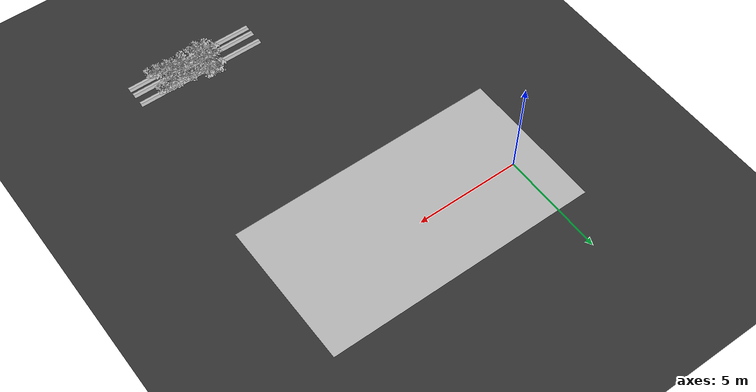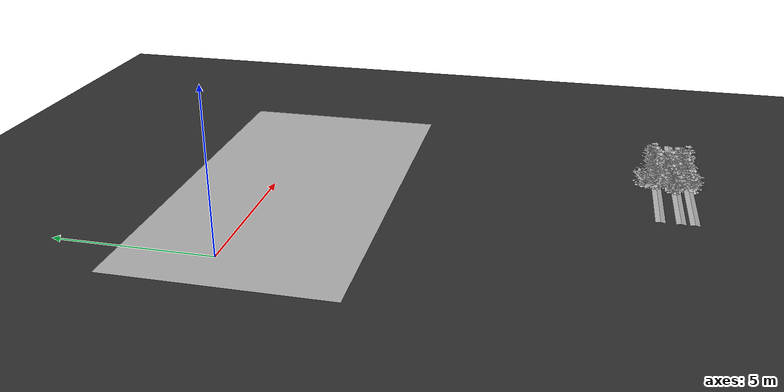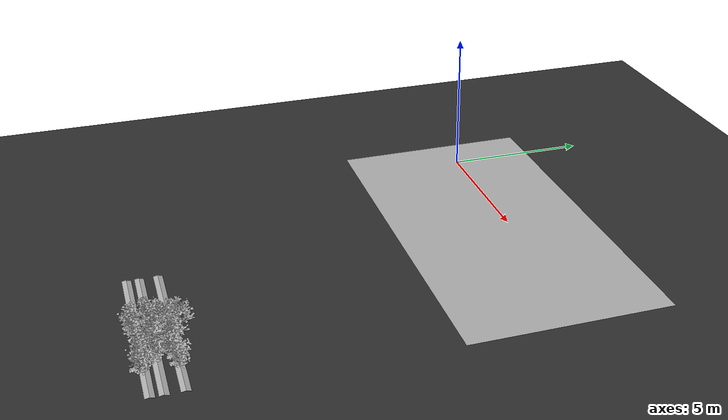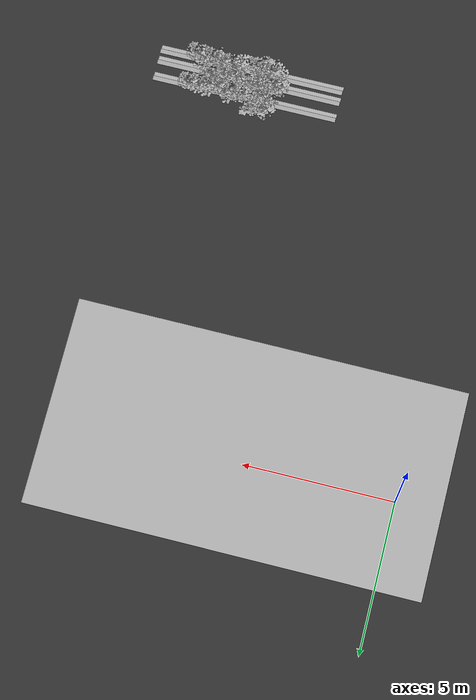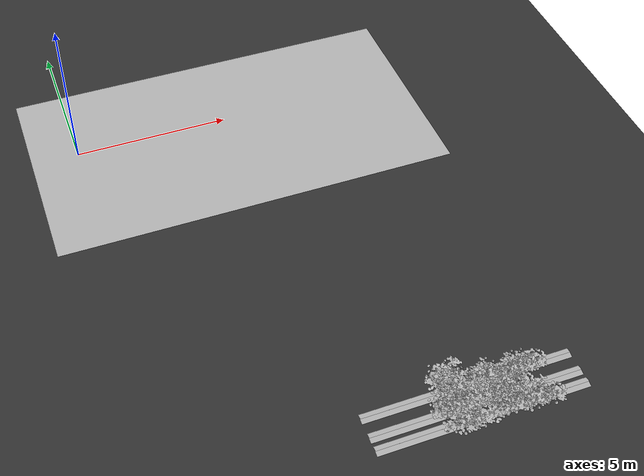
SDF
<sdf version="1.7">
 <world name="default">
  <model name="ground_plane">
   <static>1</static>
   <link name="link">
    <collision name="collision">
     <geometry><plane><normal>0 0 1</normal><size>100 100</size></plane></geometry>
     <surface>
      <contact><collide_bitmask>65535</collide_bitmask></contact>
      <friction><ode><mu>100</mu><mu2>50</mu2></ode></friction>
     </surface>
    </collision>
    <visual name="visual">
     <cast_shadows>0</cast_shadows>
     <geometry><plane><normal>0 0 1</normal><size>100 100</size></plane></geometry>
     <material>
      <ambient>0.2 0.2 0.2 1.0</ambient>
      <diffuse>0.2 0.2 0.2 1.0</diffuse>
      <specular>0.2 0.2 0.2 1.0</specular>
      <emissive>0.2 0.2 0.2 1.0</emissive>
     </material>
    </visual>
   </link>
  </model>
  <model name="ground">
   <pose>5 -0.5 0.01  3.141592654 0 0</pose>
   <static>true</static>
   <link name="body">
    <visual name="visual">
     <cast_shadows>0</cast_shadows>
     <geometry>
      <mesh><uri>file:///home/ifcosta/catkin_ws/src/cnn_line/worlds/models/ground.obj</uri></mesh>
     </geometry>
    </visual>
   </link>
  </model>
  <model name="plt_40024">
   <pose>7.23 -13.3 0.0149 0.0 0.0 0.73686</pose>
   <static>true</static>
   <link name="body">
    <visual name="visual">
     <geometry>
      <mesh><uri>file:///home/ifcosta/catkin_ws/src/cnn_line/worlds/models/plant37.obj</uri></mesh>
     </geometry>
    </visual>
   </link>
  </model>
  <model name="plt_40025">
   <pose>7.53 -13.3 0.0139 0.0 0.0 -1.293</pose>
   <static>true</static>
   <link name="body">
    <visual name="visual">
     <geometry>
      <mesh><uri>file:///home/ifcosta/catkin_ws/src/cnn_line/worlds/models/plant37.obj</uri></mesh>
     </geometry>
    </visual>
   </link>
  </model>
  <model name="plt_40026">
   <pose>7.75 -13.3 0.0156 0.0 0.0 0.22339</pose>
   <static>true</static>
   <link name="body">
    <visual name="visual">
     <geometry>
      <mesh><uri>file:///home/ifcosta/catkin_ws/src/cnn_line/worlds/models/plant37.obj</uri></mesh>
     </geometry>
    </visual>
   </link>
  </model>
  <model name="plt_40028">
   <pose>8.43 -13.2 0.0144 0.0 0.0 1.6141</pose>
   <static>true</static>
   <link name="body">
    <visual name="visual">
     <geometry>
      <mesh><uri>file:///home/ifcosta/catkin_ws/src/cnn_line/worlds/models/plant37.obj</uri></mesh>
     </geometry>
    </visual>
   </link>
  </model>
  <model name="plt_40029">
   <pose>8.71 -13.2 0.011 0.0 0.0 0.21427</pose>
   <static>true</static>
   <link name="body">
    <visual name="visual">
     <geometry>
      <mesh><uri>file:///home/ifcosta/catkin_ws/src/cnn_line/worlds/models/plant37.obj</uri></mesh>
     </geometry>
    </visual>
   </link>
  </model>
  <model name="plt_40030">
   <pose>9.02 -13.2 0.0133 0.0 0.0 0.032871</pose>
   <static>true</static>
   <link name="body">
    <visual name="visual">
     <geometry>
      <mesh><uri>file:///home/ifcosta/catkin_ws/src/cnn_line/worlds/models/plant37.obj</uri></mesh>
     </geometry>
    </visual>
   </link>
  </model>
  <model name="plt_40031">
   <pose>9.29 -13.3 0.0153 0.0 0.0 0.39511</pose>
   <static>true</static>
   <link name="body">
    <visual name="visual">
     <geometry>
      <mesh><uri>file:///home/ifcosta/catkin_ws/src/cnn_line/worlds/models/plant37.obj</uri></mesh>
     </geometry>
    </visual>
   </link>
  </model>
  <model name="plt_40032">
   <pose>9.65 -13.2 0.0117 0.0 0.0 -1.1111</pose>
   <static>true</static>
   <link name="body">
    <visual name="visual">
     <geometry>
      <mesh><uri>file:///home/ifcosta/catkin_ws/src/cnn_line/worlds/models/plant37.obj</uri></mesh>
     </geometry>
    </visual>
   </link>
  </model>
  <model name="plt_40033">
   <pose>9.9 -13.3 0.0164 0.0 0.0 0.026035</pose>
   <static>true</static>
   <link name="body">
    <visual name="visual">
     <geometry>
      <mesh><uri>file:///home/ifcosta/catkin_ws/src/cnn_line/worlds/models/plant37.obj</uri></mesh>
     </geometry>
    </visual>
   </link>
  </model>
  <model name="slope_1634">
   <pose>8.0 -13.2 -0.005 0.0 0.0 0.0</pose>
   <static>true</static>
   <link name="body">
    <visual name="visual">
     <geometry>
      <mesh><uri>file:///home/ifcosta/catkin_ws/src/cnn_line/worlds/models/slope.obj</uri></mesh>
     </geometry>
    </visual>
   </link>
  </model>
  <model name="slope_1734">
   <pose>8.0 -13.2 -0.005 0.0 0.0 3.1416</pose>
   <static>true</static>
   <link name="body">
    <visual name="visual">
     <geometry>
      <mesh><uri>file:///home/ifcosta/catkin_ws/src/cnn_line/worlds/models/slope.obj</uri></mesh>
     </geometry>
    </visual>
   </link>
  </model>
  <model name="plt_40057">
   <pose>6.93 -12.7 0.0172 0.0 0.0 -1.5789</pose>
   <static>true</static>
   <link name="body">
    <visual name="visual">
     <geometry>
      <mesh><uri>file:///home/ifcosta/catkin_ws/src/cnn_line/worlds/models/plant37.obj</uri></mesh>
     </geometry>
    </visual>
   </link>
  </model>
  <model name="plt_40058">
   <pose>7.18 -12.8 0.0165 0.0 0.0 -0.016354</pose>
   <static>true</static>
   <link name="body">
    <visual name="visual">
     <geometry>
      <mesh><uri>file:///home/ifcosta/catkin_ws/src/cnn_line/worlds/models/plant37.obj</uri></mesh>
     </geometry>
    </visual>
   </link>
  </model>
  <model name="plt_40059">
   <pose>7.49 -12.7 0.0131 0.0 0.0 -0.033148</pose>
   <static>true</static>
   <link name="body">
    <visual name="visual">
     <geometry>
      <mesh><uri>file:///home/ifcosta/catkin_ws/src/cnn_line/worlds/models/plant37.obj</uri></mesh>
     </geometry>
    </visual>
   </link>
  </model>
  <model name="plt_40060">
   <pose>7.75 -12.7 0.013 0.0 0.0 0.92117</pose>
   <static>true</static>
   <link name="body">
    <visual name="visual">
     <geometry>
      <mesh><uri>file:///home/ifcosta/catkin_ws/src/cnn_line/worlds/models/plant37.obj</uri></mesh>
     </geometry>
    </visual>
   </link>
  </model>
  <model name="plt_40061">
   <pose>8.05 -12.7 0.0144 0.0 0.0 0.4469</pose>
   <static>true</static>
   <link name="body">
    <visual name="visual">
     <geometry>
      <mesh><uri>file:///home/ifcosta/catkin_ws/src/cnn_line/worlds/models/plant37.obj</uri></mesh>
     </geometry>
    </visual>
   </link>
  </model>
  <model name="plt_40062">
   <pose>8.37 -12.8 0.018 0.0 0.0 -0.53712</pose>
   <static>true</static>
   <link name="body">
    <visual name="visual">
     <geometry>
      <mesh><uri>file:///home/ifcosta/catkin_ws/src/cnn_line/worlds/models/plant37.obj</uri></mesh>
     </geometry>
    </visual>
   </link>
  </model>
  <model name="plt_40063">
   <pose>8.7 -12.7 0.015 0.0 0.0 -2.7113</pose>
   <static>true</static>
   <link name="body">
    <visual name="visual">
     <geometry>
      <mesh><uri>file:///home/ifcosta/catkin_ws/src/cnn_line/worlds/models/plant37.obj</uri></mesh>
     </geometry>
    </visual>
   </link>
  </model>
  <model name="plt_40064">
   <pose>8.95 -12.7 0.016 0.0 0.0 1.8262</pose>
   <static>true</static>
   <link name="body">
    <visual name="visual">
     <geometry>
      <mesh><uri>file:///home/ifcosta/catkin_ws/src/cnn_line/worlds/models/plant37.obj</uri></mesh>
     </geometry>
    </visual>
   </link>
  </model>
  <model name="plt_40065">
   <pose>9.27 -12.7 0.0154 0.0 0.0 -0.1378</pose>
   <static>true</static>
   <link name="body">
    <visual name="visual">
     <geometry>
      <mesh><uri>file:///home/ifcosta/catkin_ws/src/cnn_line/worlds/models/plant37.obj</uri></mesh>
     </geometry>
    </visual>
   </link>
  </model>
  <model name="slope_1668">
   <pose>8.0 -12.8 -0.005 0.0 0.0 0.0</pose>
   <static>true</static>
   <link name="body">
    <visual name="visual">
     <geometry>
      <mesh><uri>file:///home/ifcosta/catkin_ws/src/cnn_line/worlds/models/slope.obj</uri></mesh>
     </geometry>
    </visual>
   </link>
  </model>
  <model name="slope_1768">
   <pose>8.0 -12.8 -0.005 0.0 0.0 3.1416</pose>
   <static>true</static>
   <link name="body">
    <visual name="visual">
     <geometry>
      <mesh><uri>file:///home/ifcosta/catkin_ws/src/cnn_line/worlds/models/slope.obj</uri></mesh>
     </geometry>
    </visual>
   </link>
  </model>
  <model name="plt_40092">
   <pose>7.21 -12.2 0.0153 0.0 0.0 -0.8876</pose>
   <static>true</static>
   <link name="body">
    <visual name="visual">
     <geometry>
      <mesh><uri>file:///home/ifcosta/catkin_ws/src/cnn_line/worlds/models/plant37.obj</uri></mesh>
     </geometry>
    </visual>
   </link>
  </model>
  <model name="plt_40093">
   <pose>7.51 -12.3 0.0173 0.0 0.0 -0.66743</pose>
   <static>true</static>
   <link name="body">
    <visual name="visual">
     <geometry>
      <mesh><uri>file:///home/ifcosta/catkin_ws/src/cnn_line/worlds/models/plant37.obj</uri></mesh>
     </geometry>
    </visual>
   </link>
  </model>
  <model name="plt_40095">
   <pose>8.11 -12.2 0.0139 0.0 0.0 0.61712</pose>
   <static>true</static>
   <link name="body">
    <visual name="visual">
     <geometry>
      <mesh><uri>file:///home/ifcosta/catkin_ws/src/cnn_line/worlds/models/plant37.obj</uri></mesh>
     </geometry>
    </visual>
   </link>
  </model>
  <model name="plt_40096">
   <pose>8.43 -12.2 0.0131 0.0 0.0 0.54068</pose>
   <static>true</static>
   <link name="body">
    <visual name="visual">
     <geometry>
      <mesh><uri>file:///home/ifcosta/catkin_ws/src/cnn_line/worlds/models/plant37.obj</uri></mesh>
     </geometry>
    </visual>
   </link>
  </model>
  <model name="plt_40097">
   <pose>8.67 -12.2 0.0174 0.0 0.0 -0.43459</pose>
   <static>true</static>
   <link name="body">
    <visual name="visual">
     <geometry>
      <mesh><uri>file:///home/ifcosta/catkin_ws/src/cnn_line/worlds/models/plant37.obj</uri></mesh>
     </geometry>
    </visual>
   </link>
  </model>
  <model name="plt_40098">
   <pose>9.01 -12.3 0.0137 0.0 0.0 0.079791</pose>
   <static>true</static>
   <link name="body">
    <visual name="visual">
     <geometry>
      <mesh><uri>file:///home/ifcosta/catkin_ws/src/cnn_line/worlds/models/plant37.obj</uri></mesh>
     </geometry>
    </visual>
   </link>
  </model>
  <model name="plt_40099">
   <pose>9.32 -12.3 0.0167 0.0 0.0 -0.5148</pose>
   <static>true</static>
   <link name="body">
    <visual name="visual">
     <geometry>
      <mesh><uri>file:///home/ifcosta/catkin_ws/src/cnn_line/worlds/models/plant37.obj</uri></mesh>
     </geometry>
    </visual>
   </link>
  </model>
  <model name="plt_40100">
   <pose>9.6 -12.2 0.0157 0.0 0.0 -0.026493</pose>
   <static>true</static>
   <link name="body">
    <visual name="visual">
     <geometry>
      <mesh><uri>file:///home/ifcosta/catkin_ws/src/cnn_line/worlds/models/plant37.obj</uri></mesh>
     </geometry>
    </visual>
   </link>
  </model>
  <model name="plt_40101">
   <pose>9.92 -12.2 0.016 0.0 0.0 0.13246</pose>
   <static>true</static>
   <link name="body">
    <visual name="visual">
     <geometry>
      <mesh><uri>file:///home/ifcosta/catkin_ws/src/cnn_line/worlds/models/plant37.obj</uri></mesh>
     </geometry>
    </visual>
   </link>
  </model>
  <model name="slope_1702">
   <pose>8.0 -12.2 -0.005 0.0 0.0 0.0</pose>
   <static>true</static>
   <link name="body">
    <visual name="visual">
     <geometry>
      <mesh><uri>file:///home/ifcosta/catkin_ws/src/cnn_line/worlds/models/slope.obj</uri></mesh>
     </geometry>
    </visual>
   </link>
  </model>
  <model name="slope_1802">
   <pose>8.0 -12.2 -0.005 0.0 0.0 3.1416</pose>
   <static>true</static>
   <link name="body">
    <visual name="visual">
     <geometry>
      <mesh><uri>file:///home/ifcosta/catkin_ws/src/cnn_line/worlds/models/slope.obj</uri></mesh>
     </geometry>
    </visual>
   </link>
  </model>
  <model name="plt_40126">
   <pose>7.24 -11.8 0.0148 0.0 0.0 -2.0136</pose>
   <static>true</static>
   <link name="body">
    <visual name="visual">
     <geometry>
      <mesh><uri>file:///home/ifcosta/catkin_ws/src/cnn_line/worlds/models/plant37.obj</uri></mesh>
     </geometry>
    </visual>
   </link>
  </model>
  <model name="plt_40128">
   <pose>7.77 -11.8 0.0169 0.0 0.0 1.8535</pose>
   <static>true</static>
   <link name="body">
    <visual name="visual">
     <geometry>
      <mesh><uri>file:///home/ifcosta/catkin_ws/src/cnn_line/worlds/models/plant37.obj</uri></mesh>
     </geometry>
    </visual>
   </link>
  </model>
 </world>
</sdf>
